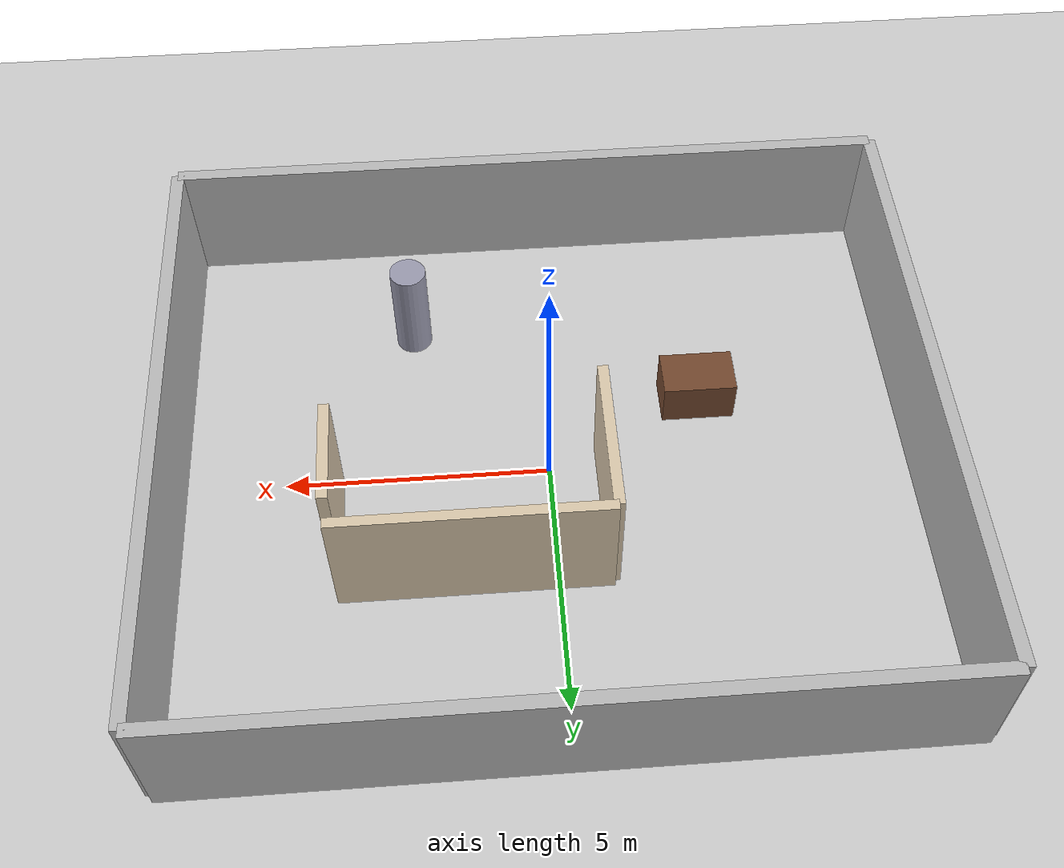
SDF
<?xml version="1.0" ?>
<sdf version="1.7">
  <world name="office_house">
    <gravity>0 0 -9.8</gravity>
    <include>
      <uri>model://ground_plane</uri>
    </include>
    <include>
      <uri>model://sun</uri>
    </include>

    <model name="perimeter_walls">
      <static>true</static>
      <link name="walls">
        <collision name="north_wall_collision">
          <pose>0 6 1.25 0 0 0</pose>
          <geometry><box><size>14 0.25 2.5</size></box></geometry>
        </collision>
        <collision name="south_wall_collision">
          <pose>0 -6 1.25 0 0 0</pose>
          <geometry><box><size>14 0.25 2.5</size></box></geometry>
        </collision>
        <collision name="east_wall_collision">
          <pose>7 0 1.25 0 0 0</pose>
          <geometry><box><size>0.25 12 2.5</size></box></geometry>
        </collision>
        <collision name="west_wall_collision">
          <pose>-7 0 1.25 0 0 0</pose>
          <geometry><box><size>0.25 12 2.5</size></box></geometry>
        </collision>

        <visual name="north_wall_visual">
          <pose>0 6 1.25 0 0 0</pose>
          <geometry><box><size>14 0.25 2.5</size></box></geometry>
          <material><ambient>0.72 0.72 0.72 1</ambient></material>
        </visual>
        <visual name="south_wall_visual">
          <pose>0 -6 1.25 0 0 0</pose>
          <geometry><box><size>14 0.25 2.5</size></box></geometry>
          <material><ambient>0.72 0.72 0.72 1</ambient></material>
        </visual>
        <visual name="east_wall_visual">
          <pose>7 0 1.25 0 0 0</pose>
          <geometry><box><size>0.25 12 2.5</size></box></geometry>
          <material><ambient>0.72 0.72 0.72 1</ambient></material>
        </visual>
        <visual name="west_wall_visual">
          <pose>-7 0 1.25 0 0 0</pose>
          <geometry><box><size>0.25 12 2.5</size></box></geometry>
          <material><ambient>0.72 0.72 0.72 1</ambient></material>
        </visual>
      </link>
    </model>

    <model name="inner_room">
      <static>true</static>
      <link name="room_walls">
        <collision name="room_north">
          <pose>1.5 2.5 1.25 0 0 0</pose>
          <geometry><box><size>5.0 0.2 2.5</size></box></geometry>
        </collision>
        <collision name="room_west">
          <pose>-1.0 1.0 1.25 0 0 0</pose>
          <geometry><box><size>0.2 3.0 2.5</size></box></geometry>
        </collision>
        <collision name="room_east">
          <pose>4.0 1.0 1.25 0 0 0</pose>
          <geometry><box><size>0.2 2.0 2.5</size></box></geometry>
        </collision>
        <visual name="room_north_visual">
          <pose>1.5 2.5 1.25 0 0 0</pose>
          <geometry><box><size>5.0 0.2 2.5</size></box></geometry>
          <material><ambient>0.85 0.78 0.67 1</ambient></material>
        </visual>
        <visual name="room_west_visual">
          <pose>-1.0 1.0 1.25 0 0 0</pose>
          <geometry><box><size>0.2 3.0 2.5</size></box></geometry>
          <material><ambient>0.85 0.78 0.67 1</ambient></material>
        </visual>
        <visual name="room_east_visual">
          <pose>4.0 1.0 1.25 0 0 0</pose>
          <geometry><box><size>0.2 2.0 2.5</size></box></geometry>
          <material><ambient>0.85 0.78 0.67 1</ambient></material>
        </visual>
      </link>
    </model>

    <model name="table_block">
      <static>true</static>
      <pose>-3.0 -1.5 0.45 0 0 0</pose>
      <link name="table">
        <collision name="collision">
          <geometry><box><size>1.4 0.9 0.9</size></box></geometry>
        </collision>
        <visual name="visual">
          <geometry><box><size>1.4 0.9 0.9</size></box></geometry>
          <material><ambient>0.45 0.28 0.18 1</ambient></material>
        </visual>
      </link>
    </model>

    <model name="pillar_a">
      <static>true</static>
      <pose>2.5 -3.5 1.0 0 0 0</pose>
      <link name="pillar">
        <collision name="collision">
          <geometry><cylinder><radius>0.35</radius><length>2.0</length></cylinder></geometry>
        </collision>
        <visual name="visual">
          <geometry><cylinder><radius>0.35</radius><length>2.0</length></cylinder></geometry>
          <material><ambient>0.6 0.6 0.68 1</ambient></material>
        </visual>
      </link>
    </model>
  </world>
</sdf>
